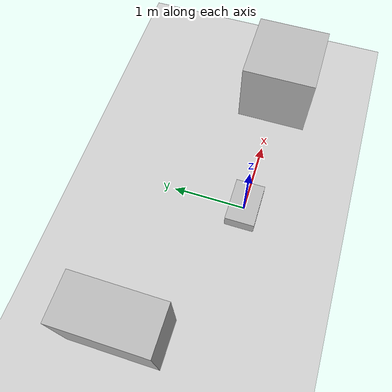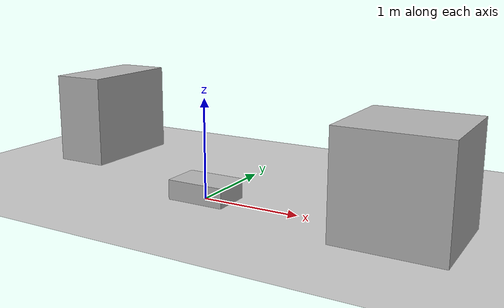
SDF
<?xml version="1.0" ?>
<sdf version="1.7">
  <world name="warehouse">

    <!-- Physique -->
    <physics name="1ms" type="ignored">
      <max_step_size>0.001</max_step_size>
      <real_time_factor>1.0</real_time_factor>
    </physics>

    <!-- Lumière directionnelle (équivalent "sun") -->
    <light name="sun_like" type="directional">
      <pose>0 0 10 0 0 0</pose>
      <diffuse>1 1 1 1</diffuse>
      <specular>0.2 0.2 0.2 1</specular>
      <direction>-0.5 -0.2 -1</direction>
      <attenuation>
        <range>100</range>
        <constant>0.9</constant>
        <linear>0.01</linear>
        <quadratic>0.001</quadratic>
      </attenuation>
      <cast_shadows>true</cast_shadows>
    </light>

    <!-- Sol (plane) -->
    <model name="ground">
      <static>true</static>
      <link name="link">
        <collision name="collision">
          <geometry>
            <plane>
              <normal>0 0 1</normal>
              <size>50 50</size>
            </plane>
          </geometry>
        </collision>
        <visual name="visual">
          <geometry>
            <plane>
              <normal>0 0 1</normal>
              <size>50 50</size>
            </plane>
          </geometry>
          <material>
            <ambient>0.8 0.8 0.8 1</ambient>
            <diffuse>0.8 0.8 0.8 1</diffuse>
          </material>
        </visual>
      </link>
    </model>

    <!-- Obstacles -->
    <model name="obstacle_box_1">
      <pose>2 0 0.5 0 0 0</pose>
      <static>true</static>
      <link name="link">
        <collision name="collision">
          <geometry><box><size>1 1 1</size></box></geometry>
        </collision>
        <visual name="visual">
          <geometry><box><size>1 1 1</size></box></geometry>
        </visual>
      </link>
    </model>

    <model name="obstacle_box_2">
      <pose>-2 1 0.5 0 0 0</pose>
      <static>true</static>
      <link name="link">
        <collision name="collision">
          <geometry><box><size>0.6 1.2 1</size></box></geometry>
        </collision>
        <visual name="visual">
          <geometry><box><size>0.6 1.2 1</size></box></geometry>
        </visual>
      </link>
    </model>
    <include>
        <uri>file:///home/ambarry/ros2_ws_palette_follow/src/palette_follow_sim/models/amr_simple/model.sdf</uri>
        <name>amr_simple</name>
        <pose>0 0 0.1 0 0 0</pose>
    </include>

  </world>

</sdf>

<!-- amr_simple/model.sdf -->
<sdf version="1.7">
  <model name="amr_simple">
    <static>false</static>
    <pose>0 0 0.1 0 0 0</pose>

    <link name="base_link">
      <!-- Visuel du châssis -->
      <visual name="base_visual">
        <geometry>
          <box><size>0.6 0.4 0.2</size></box>
        </geometry>
      </visual>

      <!-- Collision du châssis -->
      <collision name="base_collision">
        <geometry>
          <box><size>0.6 0.4 0.2</size></box>
        </geometry>
      </collision>

      <!-- Masse simple -->
      <inertial>
        <mass>20.0</mass>
        <inertia>
          <ixx>0.5</ixx> <iyy>0.5</iyy> <izz>0.5</izz>
          <ixy>0</ixy> <ixz>0</ixz> <iyz>0</iyz>
        </inertia>
      </inertial>
    </link>
  </model>
</sdf>
